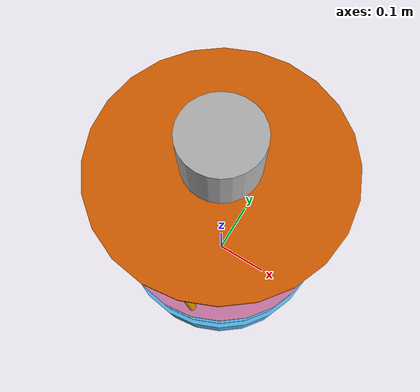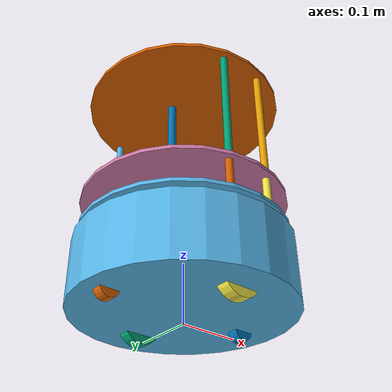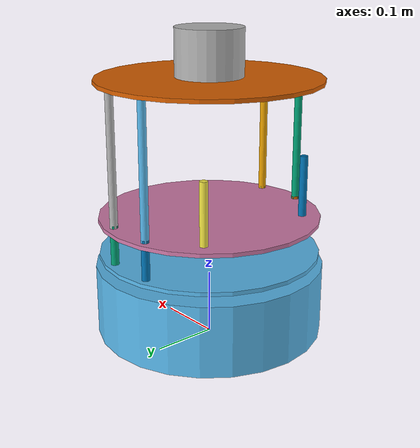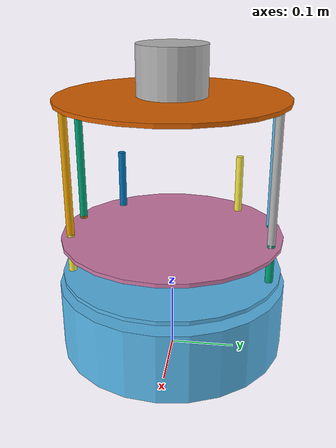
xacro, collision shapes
<?xml version="1.0"?>
<robot name="turtlebot" xmlns:xacro="http://ros.org/wiki/xacro">

  <xacro:include filename="$(find robots_description)/model/chassis/yujin/urdf/yujin-Kobuki.urdf.xacro" />
  <xacro:include filename="$(find robots_description)/model/robots/turtlebot/stacks/hexagons.urdf.xacro"/>
  <xacro:include filename="$(find robots_description)/model/sensors/microsoft/urdf/kinect.urdf.xacro"/>
  <xacro:include filename="$(find robots_description)/model/sensors/velodyne/urdf/velodyne-VLP16.urdf.xacro"/>
  <xacro:include filename="$(find robots_description)/model/sensors/velodyne/urdf/velodyne-HDL32E.urdf.xacro"/>

  <xacro:arg name="robot" default=""/>

  <yujin-kobuki/>

  <joint name="stack_hexagons_joint" type="fixed">
    <origin xyz="0 0 0" rpy="0 0 0"/>
    <parent link="base_link"/>
    <child link="stack_hexagons"/>
  </joint>
  <turtlebot-body model_id="stack_hexagons"/>

  <joint name="$(arg robot)/velodyne_VLP16_01_joint" type="fixed">
    <parent link="base_link" />
    <child link="$(arg robot)/velodyne_VLP16_01" />
    <origin xyz="0 0 0.4" rpy="0 0 0" />
  </joint>
  <xacro:velodyne-VLP16 model_id="$(arg robot)/velodyne_VLP16_01" topic="$(arg robot)/velodyne_VLP16_01/laser_scan" />

</robot>

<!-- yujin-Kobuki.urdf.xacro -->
<robot name="yujin-Kobuki" xmlns:xacro="http://ros.org/wiki/xacro">

  <xacro:include filename="$(find robots_description)/model/chassis/yujin/urdf/yujin-Kobuki_gazebo.urdf.xacro"/>

  <xacro:property name="M_SCALE" value="0.001"/>
  <xacro:property name="M_PI" value="3.1415926535897931"/>

  <!-- Kobuki -->
  <xacro:macro name="yujin-Kobuki">
    <link name="base_footprint"/>
    <joint name="base_link_joint" type="fixed">
      <origin xyz="0 0 0.0102" rpy="0 0 0" />
      <parent link="base_footprint"/>
      <child link="base_link" />
    </joint>
    <link name="base_link">
      <visual>
        <geometry>
          <mesh filename="package://robots_description/model/chassis/yujin/meshes/main_body.dae" />
        </geometry>
        <origin xyz="0.001 0 0.05199" rpy="0 0 0"/>
      </visual>
      <collision>
        <geometry>
          <cylinder length="0.10938" radius="0.176"/>
        </geometry>
        <origin xyz="0.0 0 0.05949" rpy="0 0 0"/>
      </collision>
      <inertial>
        <mass value="2.4"/> <!-- 2.4/2.6 kg for small/big battery pack -->
        <origin xyz="0 0 0"/>
        <inertia ixx="0.0001" ixy="0.0" ixz="0.0"
                 iyy="0.0001" iyz="0.0"
                 izz="0.0001" />
      </inertial>
    </link>

    <joint name="wheel_left_link_joint" type="continuous">
      <origin xyz="0.00 ${0.23/2} 0.0250" rpy="${-M_PI/2} 0 0"/>
      <parent link="base_link"/>
      <child link="wheel_left_link"/>
      <axis xyz="0 0 1"/>
    </joint>
    <link name="wheel_left_link">
      <visual>
        <geometry>
          <mesh filename="package://robots_description/model/chassis/yujin/meshes/wheel.dae"/>
        </geometry>
        <origin xyz="0 0 0" rpy="0 0 0"/>
      </visual>
      <collision>
        <geometry>
          <cylinder length="0.0206" radius="0.0352"/>
        </geometry>
        <origin rpy="0 0 0" xyz="0 0 0"/>
      </collision>
      <inertial>
        <mass value="0.01" />
        <origin xyz="0 0 0" />
        <inertia ixx="0.001" ixy="0.0" ixz="0.0"
                 iyy="0.001" iyz="0.0"
                 izz="0.001" />
      </inertial>
    </link>

    <joint name="wheel_right_link_joint" type="continuous">
      <origin xyz="0.00 -${0.23/2} 0.0250" rpy="${-M_PI/2} 0 0"/>
      <parent link="base_link"/>
      <child link="wheel_right_link"/>
      <axis xyz="0 0 1"/>
    </joint>
    <link name="wheel_right_link">
      <visual>
        <geometry>
          <mesh filename="package://robots_description/model/chassis/yujin/meshes/wheel.dae"/>
        </geometry>
        <origin xyz="0 0 0" rpy="0 0 0"/>
      </visual>
      <collision>
        <geometry>
          <cylinder length="0.0206" radius="0.0350"/>
        </geometry>
        <origin rpy="0 0 0" xyz="0 0 0"/>
      </collision>
      <inertial>
        <mass value="0.01" />
        <origin xyz="0 0 0" />
        <inertia ixx="0.001" ixy="0.0" ixz="0.0"
                 iyy="0.001" iyz="0.0"
                 izz="0.001" />
      </inertial>
    </link>

    <joint name="caster_front_link_joint" type="fixed">
      <origin xyz="0.115 0.0 0.007" rpy="${-M_PI/2} 0 0"/>
      <parent link="base_link"/>
      <child link="caster_front_link"/>
    </joint>
    <link name="caster_front_link">
      <collision>
        <geometry>
          <cylinder length="0.0176" radius="0.017"/>
        </geometry>
        <origin rpy="0 0 0" xyz="0 0 0"/>
      </collision>
      <inertial>
        <mass value="0.01" />
        <origin xyz="0 0 0" />
        <inertia ixx="0.001" ixy="0.0" ixz="0.0"
                 iyy="0.001" iyz="0.0"
                 izz="0.001" />
      </inertial>
    </link>

    <joint name="caster_back_link_joint" type="fixed">
      <origin xyz="-0.135 0.0 0.009" rpy="${-M_PI/2} 0 0"/>
      <parent link="base_link"/>
      <child link="caster_back_link"/>
    </joint>
    <link name="caster_back_link">
      <collision>
        <geometry>
          <cylinder length="0.0176" radius="0.017"/>
        </geometry>
        <origin rpy="0 0 0" xyz="0 0 0"/>
      </collision>
      <inertial>
        <mass value="0.01" />
        <origin xyz="0 0 0" />
        <inertia ixx="0.001" ixy="0.0" ixz="0.0"
                 iyy="0.001" iyz="0.0"
                 izz="0.001" />
      </inertial>
    </link>

    <!-- Kobuki's sensors -->
    <joint name="gyro_link_joint" type="fixed">
      <origin xyz="0.056 0.062 0.0202" rpy="0 0 0"/>
      <parent link="base_link"/>
      <child link="gyro_link"/>
      <axis xyz="0 1 0"/>
    </joint>
    <link name="gyro_link">
      <inertial>
        <mass value="0.001"/>
        <origin xyz="0 0 0" rpy="0 0 0"/>
        <inertia ixx="0.0001" ixy="0" ixz="0"
                 iyy="0.000001" iyz="0"
                 izz="0.0001"/>
      </inertial>
    </link>

	  <joint name="cliff_sensor_left_link_joint" type="fixed">
	    <origin xyz="0.08734 0.13601 0.0214" rpy="0 ${M_PI/2} 0" />
	    <parent link="base_link"/>
	    <child link="cliff_sensor_left_link" />
	  </joint>
	  <link name="cliff_sensor_left_link">
      <inertial>
        <mass value="0.0001" />
        <origin xyz="0 0 0" />
        <inertia ixx="0.0001" ixy="0.0" ixz="0.0"
                 iyy="0.0001" iyz="0.0"
                 izz="0.0001" />
      </inertial>
    </link>

	  <joint name="cliff_sensor_right_link_joint" type="fixed">
	    <origin xyz="0.085 -0.13601 0.0214" rpy="0 ${M_PI/2} 0" />
	    <parent link="base_link"/>
	    <child link="cliff_sensor_right_link" />
	  </joint>
    <link name="cliff_sensor_right_link">
      <inertial>
        <mass value="0.0001" />
        <origin xyz="0 0 0" />
        <inertia ixx="0.0001" ixy="0.0" ixz="0.0"
                 iyy="0.0001" iyz="0.0"
                 izz="0.0001" />
      </inertial>
    </link>

    <joint name="cliff_sensor_front_link_joint" type="fixed">
      <origin xyz="0.156 0.00 0.0214" rpy="0 ${M_PI/2} 0" />
      <parent link="base_link"/>
      <child link="cliff_sensor_front_link" />
    </joint>
    <link name="cliff_sensor_front_link">
      <inertial>
        <mass value="0.0001" />
        <origin xyz="0 0 0" />
        <inertia ixx="0.0001" ixy="0.0" ixz="0.0"
                 iyy="0.0001" iyz="0.0"
                 izz="0.0001" />
      </inertial>
    </link>
  </xacro:macro>

  <xacro:macro name="yujin-Kobuki_gazebo">
    <kobuki_controller/>
    <kobuki_bumpers/>
    <kobuki_cliff_sensors/>
    <kobuki_imu/>
  </xacro:macro>

  <xacro:macro name="yujin-kobuki">
    <yujin-Kobuki/>
    <yujin-Kobuki_gazebo/>
  </xacro:macro>
</robot>

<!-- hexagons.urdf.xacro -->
<robot name="turtlebot-body" xmlns:xacro="http://ros.org/wiki/xacro">

  <xacro:property name="M_SCALE" value="0.001"/>
  <xacro:property name="M_PI" value="3.1415926535897931" />

  <xacro:macro name="stack_bottom_pole" params="parent number x_loc y_loc z_loc">
    <joint name="pole_bottom_${number}_link_joint" type="fixed">
      <origin xyz="${x_loc} ${y_loc} ${z_loc}" rpy="0 0 0"/>
      <parent link="${parent}"/>
      <child link="pole_bottom_${number}_link"/>
    </joint>
    <link name="pole_bottom_${number}_link">
      <visual>
        <origin xyz="0 0 0" rpy="0 0 0"/>
        <geometry>
          <mesh filename="package://robots_description/model/robots/turtlebot/meshes/hexagons/pole_bottom.dae"/>
        </geometry>
      </visual>
      <collision>
        <origin xyz="0 0 0" rpy="0 0 0"/>
        <geometry>
          <cylinder length="0.0492" radius="0.006"/>
        </geometry>
      </collision>
      <inertial>
        <mass value="0.008"/>
        <origin xyz="0 0 0" rpy="0 0 0"/>
        <inertia ixx="0.000001686" ixy="0.0" ixz="0.0"
                 iyy="0.000001686" iyz="0.0"
                 izz="0.000000144"/>
      </inertial>
    </link>
  </xacro:macro>

  <xacro:macro name="stack_middle_pole" params="parent number x_loc y_loc z_loc">
    <joint name="pole_middle_${number}_link_joint" type="fixed">
      <origin xyz="${x_loc} ${y_loc} ${z_loc}" rpy="0 0 0" />
      <parent link="${parent}"/>
      <child link="pole_middle_${number}_link"/>
    </joint>
    <link name="pole_middle_${number}_link">
      <visual>
        <origin xyz="0 0 0" rpy="0 ${M_PI} 0"/>
        <geometry>
          <mesh filename="package://robots_description/model/robots/turtlebot/meshes/hexagons/pole_middle.dae"/>
        </geometry>
      </visual>
      <collision>
        <origin xyz="0 0 0" rpy="0 0 0"/>
        <geometry>
          <cylinder length="0.0608" radius="0.006"/>
        </geometry>
      </collision>
      <inertial>
        <mass value="0.012"/>
        <origin xyz="0 0 0"/>
        <inertia ixx="0.000003805" ixy="0.0" ixz="0.0"
                 iyy="0.000003805" iyz="0.0"
                 izz="0.000000216"/>
      </inertial>
    </link>
  </xacro:macro>

  <xacro:macro name="stack_top_pole" params="parent number x_loc y_loc z_loc">
    <joint name="pole_top_${number}_link_joint" type="fixed">
      <origin xyz="${x_loc} ${y_loc} ${z_loc}" rpy="0 0 0"/>
      <parent link="${parent}"/>
      <child link="pole_top_${number}_link"/>
    </joint>
    <link name="pole_top_${number}_link">
      <visual>
        <origin xyz=" 0 0 0" rpy="0 0 0"/>
        <geometry>
          <mesh filename="package://robots_description/model/robots/turtlebot/meshes/hexagons/pole_top.dae"/>
        </geometry>
      </visual>
      <collision>
        <origin xyz="0 0 0" rpy="0 0 0"/>
        <geometry>
          <cylinder length="0.2032" radius="0.006"/>
        </geometry>
      </collision>
      <inertial>
        <mass value="0.060"/>
        <origin xyz="0 0 0"/>
        <inertia ixx="0.000206991" ixy="0.0" ixz="0.0"
                 iyy="0.000206991" iyz="0.0"
                 izz="0.000001080"/>
      </inertial>
    </link>
  </xacro:macro>

  <xacro:macro name="stack_3d_sensor_pole" params="parent number x_loc y_loc z_loc">
    <joint name="pole_kinect_${number}_link_joint" type="fixed">
      <origin xyz="${x_loc} ${y_loc} ${z_loc}" rpy="0 0 0"/>
      <parent link="${parent}"/>
      <child link="pole_kinect_${number}_link"/>
    </joint>
    <link name="pole_kinect_${number}_link">
      <visual>
        <origin xyz="0 0 -0.01" rpy="0 0 0"/>
        <geometry>
          <mesh filename="package://robots_description/model/robots/turtlebot/meshes/sensors/sensor_pole.dae" />
        </geometry>
      </visual>
      <collision>
        <origin xyz="0 0 0" rpy="0 0 0"/>
        <geometry>
          <cylinder length="0.0936" radius="0.006"/>
        </geometry>
      </collision>
      <inertial>
        <mass value="0.020"/>
        <origin xyz="0 0 0"/>
        <inertia ixx="0.000014782" ixy="0.0" ixz="0.0"
                 iyy="0.000014782" iyz="0.0"
                 izz="0.000000360"/>
      </inertial>
    </link>
  </xacro:macro>

  <xacro:macro name="stack_hexagons" params="parent">
    <stack_bottom_pole parent="${parent}" number="0" x_loc= "0.120" y_loc= "0.082" z_loc="0.1028"/>
    <stack_bottom_pole parent="${parent}" number="1" x_loc= "0.055" y_loc= "0.120" z_loc="0.1028"/>
    <stack_bottom_pole parent="${parent}" number="2" x_loc="-0.055" y_loc= "0.120" z_loc="0.1028"/>
    <stack_bottom_pole parent="${parent}" number="3" x_loc= "0.120" y_loc="-0.082" z_loc="0.1028"/>
    <stack_bottom_pole parent="${parent}" number="4" x_loc= "0.055" y_loc="-0.120" z_loc="0.1028"/>
    <stack_bottom_pole parent="${parent}" number="5" x_loc="-0.055" y_loc="-0.120" z_loc="0.1028"/>

    <joint name="plate_bottom_link_joint" type="fixed">
      <origin xyz="0.02364 0.0 0.1306" rpy="0 0 0"/>
      <parent link="${parent}"/>
      <child link="plate_bottom_link"/>
    </joint>
    <link name="plate_bottom_link">
      <visual>
        <origin xyz="0 0 0" rpy="0 0 0"/>
        <geometry>
          <mesh filename="package://robots_description/model/robots/turtlebot/meshes/hexagons/plate_bottom.dae"/>
        </geometry>
      </visual>
      <collision>
        <origin xyz="-0.02364 0 0" rpy="0 0 0"/>
        <geometry>
          <cylinder length="0.006" radius="0.170"/>
        </geometry>
      </collision>
      <inertial>
        <mass value="0.520" />
        <origin xyz="0 0 0" />
        <inertia ixx="0.003328" ixy="0.0" ixz="0.0"
                 iyy="0.003328" iyz="0.0"
                 izz="0.006656" />
      </inertial>
    </link>

    <stack_middle_pole parent="${parent}" number="0" x_loc= "0.0381" y_loc= "0.1505" z_loc="0.1640"/>
    <stack_middle_pole parent="${parent}" number="1" x_loc= "0.0381" y_loc="-0.1505" z_loc="0.1640"/>
    <stack_middle_pole parent="${parent}" number="2" x_loc="-0.0381" y_loc= "0.1505" z_loc="0.1640"/>
    <stack_middle_pole parent="${parent}" number="3" x_loc="-0.0381" y_loc="-0.1505" z_loc="0.1640"/>

    <joint name="plate_middle_link_joint" type="fixed">
      <origin xyz="-0.01364 0.0 0.1874" rpy="0 0 0"/>
      <parent link="${parent}"/>
      <child link="plate_middle_link"/>
    </joint>
    <link name="plate_middle_link">
      <visual>
        <origin xyz="0 0 0" rpy="0 0 0"/>
        <geometry>
          <mesh filename="package://robots_description/model/robots/turtlebot/meshes/hexagons/plate_middle.dae"/>
        </geometry>
      </visual>
      <collision>
        <origin xyz="0.01364 0.0 0.0" rpy="0 0 0"/>
        <geometry>
          <cylinder length="0.006" radius="0.170"/>
        </geometry>
      </collision>
      <inertial>
        <mass value="0.520" />
        <origin xyz="0 0 0" />
        <inertia ixx="0.003328" ixy="0.0" ixz="0.0"
                 iyy="0.003328" iyz="0.0"
                 izz="0.006656" />
      </inertial>
    </link>

    <stack_top_pole parent="${parent}" number="0" x_loc= "0.0381" y_loc= "0.1505" z_loc="0.2920"/>
    <stack_top_pole parent="${parent}" number="1" x_loc= "0.0381" y_loc="-0.1505" z_loc="0.2920"/>
    <stack_top_pole parent="${parent}" number="2" x_loc="-0.0381" y_loc= "0.1505" z_loc="0.2920"/>
    <stack_top_pole parent="${parent}" number="3" x_loc="-0.0381" y_loc="-0.1505" z_loc="0.2920"/>
    <stack_3d_sensor_pole parent="${parent}" number="0" x_loc="-0.1024" y_loc= "0.098" z_loc="0.2372"/>
    <stack_3d_sensor_pole parent="${parent}" number="1" x_loc="-0.1024" y_loc="-0.098" z_loc="0.2372"/>

    <joint name="plate_top_link_joint" type="fixed">
      <origin xyz="-0.01364 0.0  0.3966" rpy="0 0 0"/>
      <parent link="${parent}"/>
      <child link="plate_top_link"/>
    </joint>
    <link name="plate_top_link">
      <visual>
        <origin xyz="0 0 0" rpy="0 0 0"/>
        <geometry>
          <mesh filename="package://robots_description/model/robots/turtlebot/meshes/hexagons/plate_top.dae"/>
        </geometry>
      </visual>
      <collision>
        <origin xyz="0.01364 0 0" rpy="0 0 0"/>
        <geometry>
          <cylinder length="0.006" radius="0.170"/>
        </geometry>
      </collision>
      <inertial>
        <mass value="0.520"/>
        <origin xyz="0 0 0"/>
        <inertia ixx="0.003328" ixy="0.0" ixz="0.0"
                 iyy="0.003328" iyz="0.0"
                 izz="0.006656" />
      </inertial>
    </link>
  </xacro:macro>

  <xacro:macro name="turtlebot-body" params="model_id:=${model_id}">
    <link name="${model_id}"/>
    <stack_hexagons parent="${model_id}"/>
  </xacro:macro>
</robot>

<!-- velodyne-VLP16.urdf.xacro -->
<robot name="velodyne-VLP16" xmlns:xacro="http://www.ros.org/wiki/xacro" >

  <xacro:property name="M_PI" value="3.1415926535897931"/>

  <xacro:macro name="velodyne-VLP16" params="model_id:=velodyne_VLP16 topic:=velodyne_VLP16/laser_scan hz:=10 lasers:=16 samples:=1875 collision_range:=0.3 min_range:=0.9 max_range:=130.0 noise:=0.008 min_angle:=-${M_PI} max_angle:=${M_PI} gpu:=false visualize:=false">

    <link name="${model_id}"/>

    <joint name="${model_id}_base_link_joint" type="fixed">
      <origin xyz="0 0 0" rpy="0 0 0"/>
      <parent link="${model_id}"/>
      <child link="${model_id}_base_link"/>
    </joint>

    <link name="${model_id}_base_link">
      <inertial>
        <mass value="0.83"/>
        <origin xyz="0 0 0.03585"/>
        <inertia ixx="${(0.83 * (3.0*0.0516*0.0516 + 0.0717*0.0717)) / 12.0}" ixy="0" ixz="0"
                 iyy="${(0.83 * (3.0*0.0516*0.0516 + 0.0717*0.0717)) / 12.0}" iyz="0"
                 izz="${0.5 * 0.83 * (0.0516*0.0516)}"/>
      </inertial>
      <visual>
        <geometry>
          <mesh filename="package://robots_description/model/sensors/velodyne/meshes/VLP16_base_1.dae" />
        </geometry>
      </visual>
      <visual>
        <geometry>
          <mesh filename="package://robots_description/model/sensors/velodyne/meshes/VLP16_base_2.dae" />
        </geometry>
      </visual>
      <collision>
        <origin rpy="0 0 0" xyz="0 0 0.03585"/>
        <geometry>
          <cylinder radius="0.0516" length="0.0717"/>
        </geometry>
      </collision>
    </link>

    <joint name="${model_id}_laser_link_joint" type="fixed">
      <origin xyz="0 0 0.0377" rpy="0 0 0" />
      <parent link="${model_id}_base_link"/>
      <child link="${model_id}_laser_link"/>
    </joint>

    <link name="${model_id}_laser_link">
      <inertial>
        <mass value="0.01"/>
        <origin xyz="0 0 0"/>
        <inertia ixx="1e-7" ixy="0" ixz="0" iyy="1e-7" iyz="0" izz="1e-7"/>
      </inertial>
      <visual>
        <origin xyz="0 0 -0.0377" />
        <geometry>
          <mesh filename="package://robots_description/model/sensors/velodyne/meshes/VLP16_scan.dae" />
        </geometry>
      </visual>
    </link>

    <!-- Gazebo requires the velodyne_gazebo_plugins package -->
    <gazebo reference="${model_id}_laser_link">
      <xacro:if value="${gpu}">
        <sensor type="gpu_ray" name="${model_id}">
          <pose>0 0 0 0 0 0</pose>
          <visualize>${visualize}</visualize>
          <update_rate>${hz}</update_rate>
          <ray>
            <scan>
              <horizontal>
                <samples>${samples}</samples>
                <resolution>1</resolution>
                <min_angle>${min_angle}</min_angle>
                <max_angle>${max_angle}</max_angle>
              </horizontal>
              <vertical>
                <samples>${lasers}</samples>
                <resolution>1</resolution>
                <min_angle>-${15.0*M_PI/180.0}</min_angle>
                <max_angle> ${15.0*M_PI/180.0}</max_angle>
              </vertical>
            </scan>
            <range>
              <min>${collision_range}</min>
              <max>${max_range+1}</max>
              <resolution>0.001</resolution>
            </range>
            <noise>
              <type>gaussian</type>
              <mean>0.0</mean>
              <stddev>0.0</stddev>
            </noise>
          </ray>
          <plugin name="gazebo_ros_laser_controller" filename="libgazebo_ros_velodyne_gpu_laser.so">
            <topicName>/${topic}</topicName>
            <frameName>/${model_id}_laser_link</frameName>
            <min_range>${min_range}</min_range>
            <max_range>${max_range}</max_range>
            <gaussianNoise>${noise}</gaussianNoise>
          </plugin>
        </sensor>
      </xacro:if>
      <xacro:unless value="${gpu}">
        <sensor type="ray" name="${model_id}">
          <pose>0 0 0 0 0 0</pose>
          <visualize>${visualize}</visualize>
          <update_rate>${hz}</update_rate>
          <ray>
            <scan>
              <horizontal>
                <samples>${samples}</samples>
                <resolution>1</resolution>
                <min_angle>${min_angle}</min_angle>
                <max_angle>${max_angle}</max_angle>
              </horizontal>
              <vertical>
                <samples>${lasers}</samples>
                <resolution>1</resolution>
                <min_angle>-${15.0*M_PI/180.0}</min_angle>
                <max_angle> ${15.0*M_PI/180.0}</max_angle>
              </vertical>
            </scan>
            <range>
              <min>${collision_range}</min>
              <max>${max_range+1}</max>
              <resolution>0.001</resolution>
            </range>
            <noise>
              <type>gaussian</type>
              <mean>0.0</mean>
              <stddev>0.0</stddev>
            </noise>
          </ray>
          <plugin name="gazebo_ros_laser_controller" filename="libgazebo_ros_velodyne_laser.so">
            <topicName>/${topic}</topicName>
            <frameName>/${model_id}_laser_link</frameName>
            <min_range>${min_range}</min_range>
            <max_range>${max_range}</max_range>
            <gaussianNoise>${noise}</gaussianNoise>
          </plugin>
        </sensor>
      </xacro:unless>
    </gazebo>

  </xacro:macro>
</robot>

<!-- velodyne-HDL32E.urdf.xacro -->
<robot name="velodyne-HDL32E" xmlns:xacro="http://www.ros.org/wiki/xacro">

  <xacro:property name="M_PI" value="3.1415926535897931"/>

  <xacro:macro name="velodyne-HDL32E" params="model_id:=velodyne_HDL32E topic:=velodyne_HDL32E/laser_scan hz:=10 lasers:=32 samples:=2187 collision_range:=0.3 min_range:=0.9 max_range:=130.0 noise:=0.008 min_angle:=-${M_PI} max_angle:=${M_PI} gpu:=false visualize:=false">

    <link name="${model_id}"/>

    <joint name="${model_id}_base_link_joint" type="fixed">
      <origin xyz="0 0 0" rpy="0 0 0"/>
      <parent link="${model_id}"/>
      <child link="${model_id}_base_link"/>
    </joint>

    <link name="${model_id}_base_link">
      <inertial>
        <mass value="1.0"/>
        <origin xyz="0 0 0.07212"/>
        <inertia ixx="${(1.0 * (3.0*0.04267*0.04267 + 0.14424*0.14424)) / 12.0}" ixy="0" ixz="0"
          	 iyy="${(1.0 * (3.0*0.04267*0.04267 + 0.14424*0.14424)) / 12.0}" iyz="0"
         	 izz="${0.5 * 1.0 * (0.04267*0.04267)}"/>
      </inertial>
      <visual>
        <geometry>
          <mesh filename="package://robots_description/model/sensors/velodyne/meshes/HDL32E_base.dae" />
        </geometry>
      </visual>
      <collision>
        <origin rpy="0 0 0" xyz="0 0 0.07212"/>
        <geometry>
          <cylinder radius="0.04267" length="0.14424"/>
        </geometry>
      </collision>
    </link>

    <joint name="${model_id}_laser_link_joint" type="fixed">
      <origin xyz="0 0 0.09081" rpy="0 0 0"/>
      <parent link="${model_id}_base_link"/>
      <child link="${model_id}_laser_link"/>
    </joint>

    <link name="${model_id}_laser_link">
      <inertial>
        <mass value="0.01"/>
        <origin xyz="0 0 0"/>
        <inertia ixx="1e-7" ixy="0" ixz="0" iyy="1e-7" iyz="0" izz="1e-7"/>
      </inertial>
      <visual>
        <origin xyz="0 0 -0.09081" rpy="0 0 0" />
        <geometry>
          <mesh filename="package://robots_description/model/sensors/velodyne/meshes/HDL32E_scan.dae"/>
        </geometry>
      </visual>
    </link>

    <!-- Gazebo requires the velodyne_gazebo_plugins package -->
    <gazebo reference="${model_id}_laser_link">
      <xacro:if value="${gpu}">
        <sensor type="gpu_ray" name="${model_id}">
          <pose>0 0 0 0 0 0</pose>
          <visualize>${visualize}</visualize>
          <update_rate>${hz}</update_rate>
          <ray>
            <scan>
              <horizontal>
                <samples>${samples}</samples>
                <resolution>1</resolution>
                <min_angle>${min_angle}</min_angle>
                <max_angle>${max_angle}</max_angle>
              </horizontal>
              <vertical>
                <samples>${lasers}</samples>
                <resolution>1</resolution>
                <min_angle>-${30.67*M_PI/180.0}</min_angle>
                <max_angle> ${10.67*M_PI/180.0}</max_angle>
              </vertical>
            </scan>
            <range>
              <min>${collision_range}</min>
              <max>${max_range+1}</max>
              <resolution>0.001</resolution>
            </range>
            <noise>
              <type>gaussian</type>
              <mean>0.0</mean>
              <stddev>0.0</stddev>
            </noise>
          </ray>
          <plugin name="gazebo_ros_laser_controller" filename="libgazebo_ros_velodyne_gpu_laser.so">
            <topicName>/${topic}</topicName>
            <frameName>/${model_id}_laser_link</frameName>
            <min_range>${min_range}</min_range>
            <max_range>${max_range}</max_range>
            <gaussianNoise>${noise}</gaussianNoise>
          </plugin>
        </sensor>
      </xacro:if>
      <xacro:unless value="${gpu}">
        <sensor type="ray" name="${model_id}">
          <pose>0 0 0 0 0 0</pose>
          <visualize>${visualize}</visualize>
          <update_rate>${hz}</update_rate>
          <ray>
            <scan>
              <horizontal>
                <samples>${samples}</samples>
                <resolution>1</resolution>
                <min_angle>${min_angle}</min_angle>
                <max_angle>${max_angle}</max_angle>
              </horizontal>
              <vertical>
                <samples>${lasers}</samples>
                <resolution>1</resolution>
                <min_angle>-${30.67*M_PI/180.0}</min_angle>
                <max_angle> ${10.67*M_PI/180.0}</max_angle>
              </vertical>
            </scan>
            <range>
              <min>${collision_range}</min>
              <max>${max_range+1}</max>
              <resolution>0.001</resolution>
            </range>
            <noise>
              <type>gaussian</type>
              <mean>0.0</mean>
              <stddev>0.0</stddev>
            </noise>
          </ray>
          <plugin name="gazebo_ros_laser_controller" filename="libgazebo_ros_velodyne_laser.so">
            <topicName>/${topic}</topicName>
            <frameName>/${model_id}_laser_link</frameName>
            <min_range>${min_range}</min_range>
            <max_range>${max_range}</max_range>
            <gaussianNoise>${noise}</gaussianNoise>
          </plugin>
        </sensor>
      </xacro:unless>
    </gazebo>

  </xacro:macro>
</robot>
